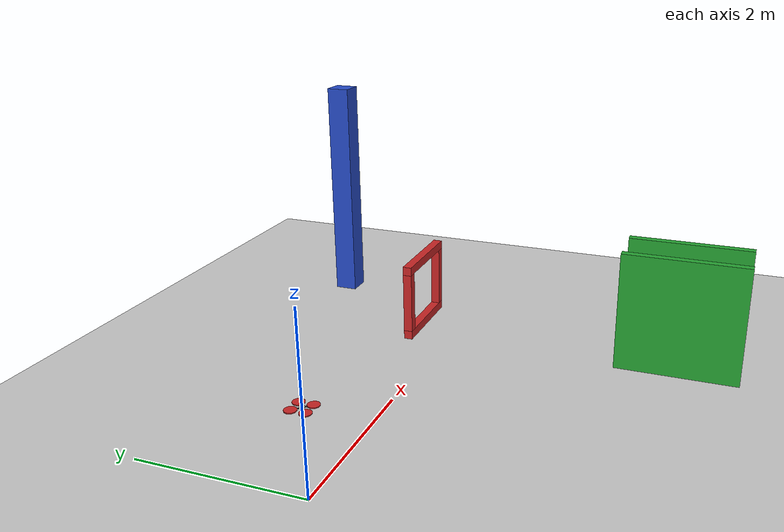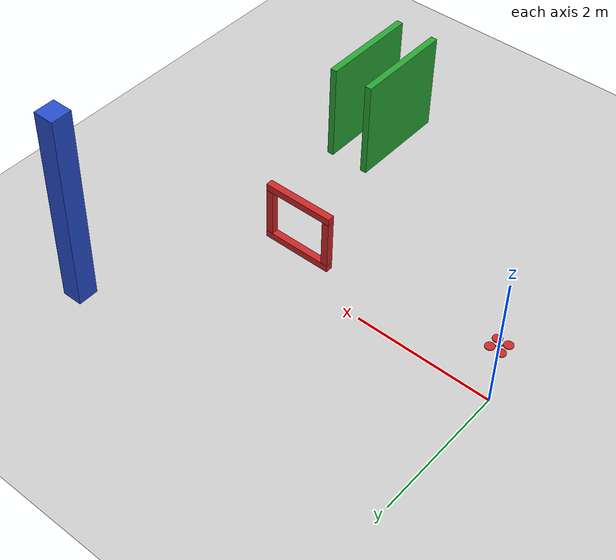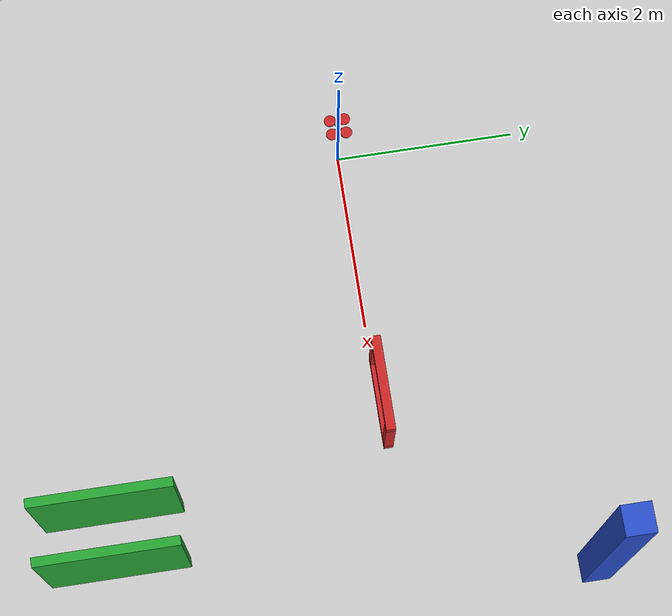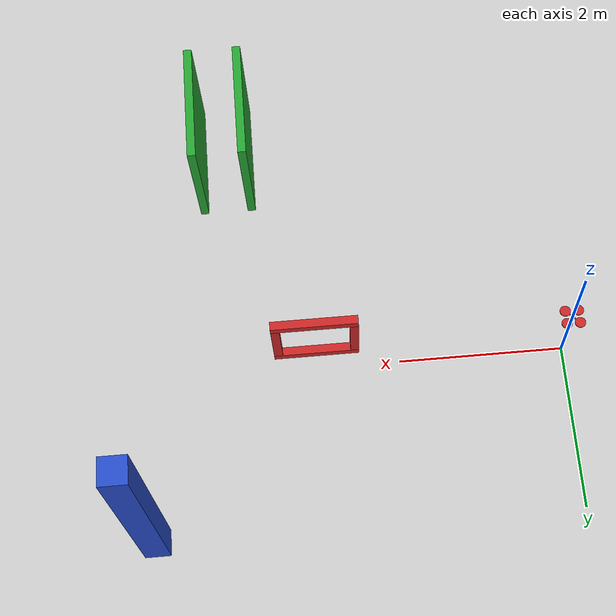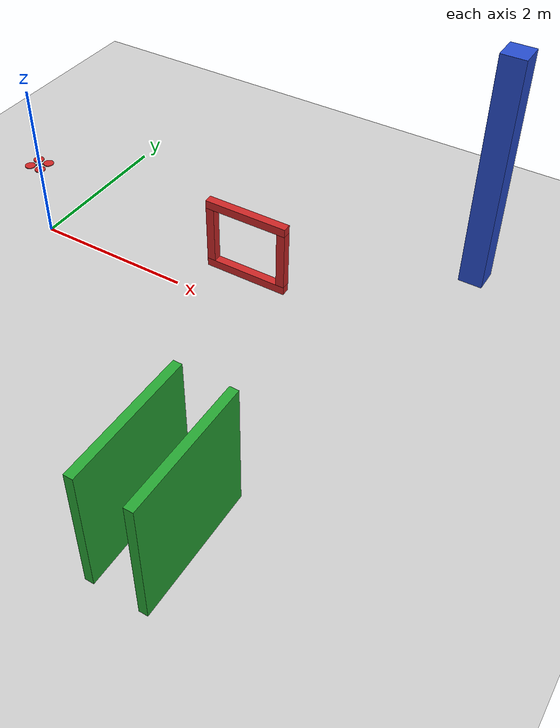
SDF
<?xml version="1.0" ?>
<sdf version="1.7">
  <world name="default">
    <gravity>0 0 -9.81</gravity>
    <physics name="default_physics" default="true" type="ode">
      <max_step_size>0.001</max_step_size>
      <real_time_update_rate>0</real_time_update_rate>
      <ode>
        <solver>
          <type>quick</type>
          <iters>50</iters>
          <sor>1.3</sor>
          <use_dynamic_moi_rescaling>false</use_dynamic_moi_rescaling>
        </solver>
        <constraints>
          <cfm>0</cfm>
          <erp>0.2</erp>
          <contact_max_correcting_vel>100</contact_max_correcting_vel>
          <contact_surface_layer>0.001</contact_surface_layer>
        </constraints>
      </ode>
    </physics>

    <scene>
      <ambient>0.4 0.4 0.4 1</ambient>
      <background>0.7 0.7 0.7 1</background>
      <shadows>true</shadows>
    </scene>

    <include>
      <uri>model://ground_plane</uri>
    </include>
    <include>
      <uri>model://sun</uri>
    </include>

    <!-- Spawn the generated quadcopter -->
    <!-- The plugin configuration will be loaded from the model's own SDF file -->
    <include name="active_drone">
      <uri>model://x_quad_drone_generated</uri>
      <pose>0 0 1.0 0 0 0</pose>
    </include>

    <!-- Rectangular Obstacles/Hoops -->
    <model name='hoop_1'>
      <static>true</static>
      <pose>3 0 1.0 0 0 0</pose>
      <link name='frame_bottom'>
        <pose>0 0 -0.4 0 0 0</pose>
        <collision name='bottom_col'>
          <geometry>
            <box>
              <size>1.0 0.1 0.1</size>
            </box>
          </geometry>
        </collision>
        <visual name='bottom_vis'>
          <geometry>
            <box>
              <size>1.0 0.1 0.1</size>
            </box>
          </geometry>
          <material>
            <script>
              <uri>file://media/materials/scripts/gazebo.material</uri>
              <name>Gazebo/Red</name>
            </script>
          </material>
        </visual>
      </link>
      <link name='frame_top'>
        <pose>0 0 0.4 0 0 0</pose>
        <collision name='top_col'>
          <geometry>
            <box>
              <size>1.0 0.1 0.1</size>
            </box>
          </geometry>
        </collision>
        <visual name='top_vis'>
          <geometry>
            <box>
              <size>1.0 0.1 0.1</size>
            </box>
          </geometry>
          <material>
            <script>
              <uri>file://media/materials/scripts/gazebo.material</uri>
              <name>Gazebo/Red</name>
            </script>
          </material>
        </visual>
      </link>
      <link name='frame_left'>
        <pose>-0.45 0 0 0 0 0</pose>
        <collision name='left_col'>
          <geometry>
            <box>
              <size>0.1 0.1 0.7</size>
            </box>
          </geometry>
        </collision>
        <visual name='left_vis'>
          <geometry>
            <box>
              <size>0.1 0.1 0.7</size>
            </box>
          </geometry>
          <material>
            <script>
              <uri>file://media/materials/scripts/gazebo.material</uri>
              <name>Gazebo/Red</name>
            </script>
          </material>
        </visual>
      </link>
      <link name='frame_right'>
        <pose>0.45 0 0 0 0 0</pose>
        <collision name='right_col'>
          <geometry>
            <box>
              <size>0.1 0.1 0.7</size>
            </box>
          </geometry>
        </collision>
        <visual name='right_vis'>
          <geometry>
            <box>
              <size>0.1 0.1 0.7</size>
            </box>
          </geometry>
          <material>
            <script>
              <uri>file://media/materials/scripts/gazebo.material</uri>
              <name>Gazebo/Red</name>
            </script>
          </material>
        </visual>
      </link>
    </model>

    <model name='pillar_1'>
      <static>true</static>
      <pose>5 2 1.5 0 0 0</pose>
      <link name='pillar_link'>
        <pose>0 0 0 0 0 0</pose>
        <collision name='collision'>
          <geometry>
            <box>
              <size>0.3 0.3 3.0</size>
            </box>
          </geometry>
        </collision>
        <visual name='visual'>
          <geometry>
            <box>
              <size>0.3 0.3 3.0</size>
            </box>
          </geometry>
          <material>
            <script>
              <uri>file://media/materials/scripts/gazebo.material</uri>
              <name>Gazebo/Blue</name>
            </script>
          </material>
        </visual>
      </link>
    </model>

    <model name='tight_gap_obstacle'>
      <static>true</static>
      <pose>4 -3 0.75 0 0 1.5708</pose>
      <link name='wall_1'>
        <pose>0 -0.3 0 0 0 0</pose>
        <collision name='wall1_col'>
          <geometry>
            <box>
              <size>1.5 0.1 1.5</size>
            </box>
          </geometry>
        </collision>
        <visual name='wall1_vis'>
          <geometry>
            <box>
              <size>1.5 0.1 1.5</size>
            </box>
          </geometry>
          <material>
            <script>
              <uri>file://media/materials/scripts/gazebo.material</uri>
              <name>Gazebo/Green</name>
            </script>
          </material>
        </visual>
      </link>
      <link name='wall_2'>
        <pose>0 0.3 0 0 0 0</pose>
        <collision name='wall2_col'>
          <geometry>
            <box>
              <size>1.5 0.1 1.5</size>
            </box>
          </geometry>
        </collision>
        <visual name='wall2_vis'>
          <geometry>
            <box>
              <size>1.5 0.1 1.5</size>
            </box>
          </geometry>
          <material>
            <script>
              <uri>file://media/materials/scripts/gazebo.material</uri>
              <name>Gazebo/Green</name>
            </script>
          </material>
        </visual>
      </link>
      <!-- Gap between wall_1 and wall_2 is 0.6 - 0.1 = 0.5m wide -->
    </model>

  </world>
</sdf>

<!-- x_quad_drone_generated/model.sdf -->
<sdf version="1.7">
  <model name="x_quad_drone_generated">
    <static>false</static>
    <pose>0 0 1.0 0 0 0</pose>
    <link name="hull">
      <pose>0 0 0 0 0 0</pose>
      <inertial>
        <mass>0.272000</mass>
        <inertia>
          <ixx>5.66666667e-05</ixx>
          <iyy>5.66666667e-05</iyy>
          <izz>7.25333333e-05</izz>
          <ixy>0</ixy><ixz>0</ixz><iyz>0</iyz>
        </inertia>
      </inertial>
      <collision name="hull_geom_col">
        <geometry><box><size>0.040000 0.040000 0.030000</size></box></geometry>
      </collision>
      <visual name="hull_geom_vis">
        <geometry><box><size>0.040000 0.040000 0.030000</size></box></geometry>
        <material><script><uri>file://media/materials/scripts/gazebo.material</uri><name>Gazebo/Grey</name></script></material>
      </visual>
    </link>
    <link name="arm_0">
      <pose>0.038900 -0.038900 0.000000 0 0 -0.785398</pose>
      <inertial>
        <mass>0.014438</mass>
        <inertia>
          <ixx>3.00781250e-07</ixx>
          <iyy>1.45947244e-05</iyy>
          <izz>1.48353494e-05</izz>
          <ixy>0</ixy><ixz>0</ixz><iyz>0</iyz>
        </inertia>
      </inertial>
      <collision name="arm_0_geom_col">
        <geometry><box><size>0.110026 0.015000 0.005000</size></box></geometry>
      </collision>
      <visual name="arm_0_geom_vis">
        <geometry><box><size>0.110026 0.015000 0.005000</size></box></geometry>
        <material><script><uri>file://media/materials/scripts/gazebo.material</uri><name>Gazebo/DarkGrey</name></script></material>
      </visual>
    </link>
    <joint name="joint_hull_to_arm_0" type="fixed">
      <parent>hull</parent>
      <child>arm_0</child>
      <pose>0 0 0 0 0 0</pose>
    </joint>
    <link name="rotor_0">
      <pose>0.077800 -0.077800 0.000000 0 0 -0.785398</pose>
      <inertial>
        <mass>0.039000</mass>
        <inertia>
          <ixx>3.96394375e-05</ixx>
          <iyy>3.96394375e-05</iyy>
          <izz>7.86288750e-05</izz>
          <ixy>0</ixy><ixz>0</ixz><iyz>0</iyz>
        </inertia>
      </inertial>
      <collision name="rotor_0_geom_col">
        <geometry><cylinder><radius>0.063500</radius><length>0.010000</length></cylinder></geometry>
      </collision>
      <visual name="rotor_0_geom_vis">
        <geometry><cylinder><radius>0.063500</radius><length>0.010000</length></cylinder></geometry>
        <material><script><uri>file://media/materials/scripts/gazebo.material</uri><name>Gazebo/Red</name></script></material>
      </visual>
    </link>
    <joint name="joint_arm_0_to_rotor_0" type="revolute">
      <parent>arm_0</parent>
      <child>rotor_0</child>
      <pose>0.055013 0 0.000000 0 0 0</pose>
      <axis><xyz>0 0 1</xyz><limit><lower>-1e16</lower><upper>1e16</upper></limit><dynamics><damping>0.001</damping></dynamics></axis>
    </joint>
    <link name="arm_1">
      <pose>-0.038900 0.038900 0.000000 0 0 2.356194</pose>
      <inertial>
        <mass>0.014438</mass>
        <inertia>
          <ixx>3.00781250e-07</ixx>
          <iyy>1.45947244e-05</iyy>
          <izz>1.48353494e-05</izz>
          <ixy>0</ixy><ixz>0</ixz><iyz>0</iyz>
        </inertia>
      </inertial>
      <collision name="arm_1_geom_col">
        <geometry><box><size>0.110026 0.015000 0.005000</size></box></geometry>
      </collision>
      <visual name="arm_1_geom_vis">
        <geometry><box><size>0.110026 0.015000 0.005000</size></box></geometry>
        <material><script><uri>file://media/materials/scripts/gazebo.material</uri><name>Gazebo/DarkGrey</name></script></material>
      </visual>
    </link>
    <joint name="joint_hull_to_arm_1" type="fixed">
      <parent>hull</parent>
      <child>arm_1</child>
      <pose>0 0 0 0 0 0</pose>
    </joint>
    <link name="rotor_1">
      <pose>-0.077800 0.077800 0.000000 0 0 2.356194</pose>
      <inertial>
        <mass>0.039000</mass>
        <inertia>
          <ixx>3.96394375e-05</ixx>
          <iyy>3.96394375e-05</iyy>
          <izz>7.86288750e-05</izz>
          <ixy>0</ixy><ixz>0</ixz><iyz>0</iyz>
        </inertia>
      </inertial>
      <collision name="rotor_1_geom_col">
        <geometry><cylinder><radius>0.063500</radius><length>0.010000</length></cylinder></geometry>
      </collision>
      <visual name="rotor_1_geom_vis">
        <geometry><cylinder><radius>0.063500</radius><length>0.010000</length></cylinder></geometry>
        <material><script><uri>file://media/materials/scripts/gazebo.material</uri><name>Gazebo/Red</name></script></material>
      </visual>
    </link>
    <joint name="joint_arm_1_to_rotor_1" type="revolute">
      <parent>arm_1</parent>
      <child>rotor_1</child>
      <pose>0.055013 0 0.000000 0 0 0</pose>
      <axis><xyz>0 0 1</xyz><limit><lower>-1e16</lower><upper>1e16</upper></limit><dynamics><damping>0.001</damping></dynamics></axis>
    </joint>
    <link name="arm_2">
      <pose>0.038900 0.038900 0.000000 0 0 0.785398</pose>
      <inertial>
        <mass>0.014438</mass>
        <inertia>
          <ixx>3.00781250e-07</ixx>
          <iyy>1.45947244e-05</iyy>
          <izz>1.48353494e-05</izz>
          <ixy>0</ixy><ixz>0</ixz><iyz>0</iyz>
        </inertia>
      </inertial>
      <collision name="arm_2_geom_col">
        <geometry><box><size>0.110026 0.015000 0.005000</size></box></geometry>
      </collision>
      <visual name="arm_2_geom_vis">
        <geometry><box><size>0.110026 0.015000 0.005000</size></box></geometry>
        <material><script><uri>file://media/materials/scripts/gazebo.material</uri><name>Gazebo/DarkGrey</name></script></material>
      </visual>
    </link>
    <joint name="joint_hull_to_arm_2" type="fixed">
      <parent>hull</parent>
      <child>arm_2</child>
      <pose>0 0 0 0 0 0</pose>
    </joint>
    <link name="rotor_2">
      <pose>0.077800 0.077800 0.000000 0 0 0.785398</pose>
      <inertial>
        <mass>0.039000</mass>
        <inertia>
          <ixx>3.96394375e-05</ixx>
          <iyy>3.96394375e-05</iyy>
          <izz>7.86288750e-05</izz>
          <ixy>0</ixy><ixz>0</ixz><iyz>0</iyz>
        </inertia>
      </inertial>
      <collision name="rotor_2_geom_col">
        <geometry><cylinder><radius>0.063500</radius><length>0.010000</length></cylinder></geometry>
      </collision>
      <visual name="rotor_2_geom_vis">
        <geometry><cylinder><radius>0.063500</radius><length>0.010000</length></cylinder></geometry>
        <material><script><uri>file://media/materials/scripts/gazebo.material</uri><name>Gazebo/Red</name></script></material>
      </visual>
    </link>
    <joint name="joint_arm_2_to_rotor_2" type="revolute">
      <parent>arm_2</parent>
      <child>rotor_2</child>
      <pose>0.055013 0 0.000000 0 0 0</pose>
      <axis><xyz>0 0 1</xyz><limit><lower>-1e16</lower><upper>1e16</upper></limit><dynamics><damping>0.001</damping></dynamics></axis>
    </joint>
    <link name="arm_3">
      <pose>-0.038900 -0.038900 0.000000 0 0 -2.356194</pose>
      <inertial>
        <mass>0.014438</mass>
        <inertia>
          <ixx>3.00781250e-07</ixx>
          <iyy>1.45947244e-05</iyy>
          <izz>1.48353494e-05</izz>
          <ixy>0</ixy><ixz>0</ixz><iyz>0</iyz>
        </inertia>
      </inertial>
      <collision name="arm_3_geom_col">
        <geometry><box><size>0.110026 0.015000 0.005000</size></box></geometry>
      </collision>
      <visual name="arm_3_geom_vis">
        <geometry><box><size>0.110026 0.015000 0.005000</size></box></geometry>
        <material><script><uri>file://media/materials/scripts/gazebo.material</uri><name>Gazebo/DarkGrey</name></script></material>
      </visual>
    </link>
    <joint name="joint_hull_to_arm_3" type="fixed">
      <parent>hull</parent>
      <child>arm_3</child>
      <pose>0 0 0 0 0 0</pose>
    </joint>
    <link name="rotor_3">
      <pose>-0.077800 -0.077800 0.000000 0 0 -2.356194</pose>
      <inertial>
        <mass>0.039000</mass>
        <inertia>
          <ixx>3.96394375e-05</ixx>
          <iyy>3.96394375e-05</iyy>
          <izz>7.86288750e-05</izz>
          <ixy>0</ixy><ixz>0</ixz><iyz>0</iyz>
        </inertia>
      </inertial>
      <collision name="rotor_3_geom_col">
        <geometry><cylinder><radius>0.063500</radius><length>0.010000</length></cylinder></geometry>
      </collision>
      <visual name="rotor_3_geom_vis">
        <geometry><cylinder><radius>0.063500</radius><length>0.010000</length></cylinder></geometry>
        <material><script><uri>file://media/materials/scripts/gazebo.material</uri><name>Gazebo/Red</name></script></material>
      </visual>
    </link>
    <joint name="joint_arm_3_to_rotor_3" type="revolute">
      <parent>arm_3</parent>
      <child>rotor_3</child>
      <pose>0.055013 0 0.000000 0 0 0</pose>
      <axis><xyz>0 0 1</xyz><limit><lower>-1e16</lower><upper>1e16</upper></limit><dynamics><damping>0.001</damping></dynamics></axis>
    </joint>
    <plugin name="trick_executor_plugin" filename="libtrick_executor_plugin.so">
      <rotor_count>4</rotor_count>
      <rotor_link_base_name>rotor_</rotor_link_base_name>
      <zmq_port>5555</zmq_port>
      <run_test_mode>true</run_test_mode>
      <test_mode_radius>2.000000</test_mode_radius>
      <test_mode_angular_velocity>0.500000</test_mode_angular_velocity>
      <test_mode_altitude>1.500000</test_mode_altitude>
      <drag_coefficient>0.100000</drag_coefficient>
    </plugin>
  </model>
</sdf>
